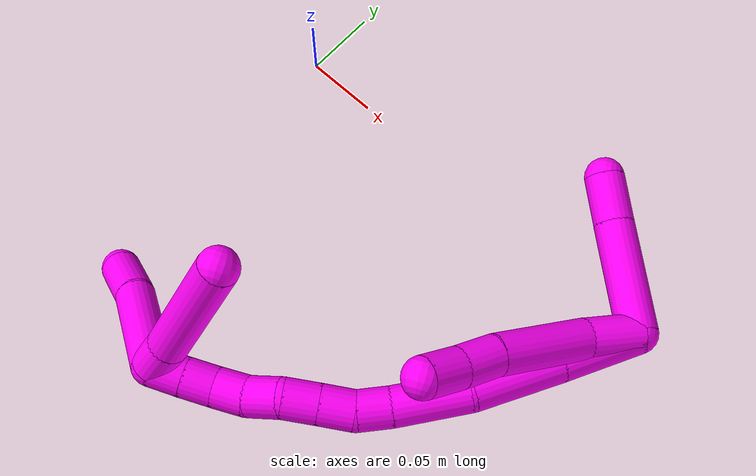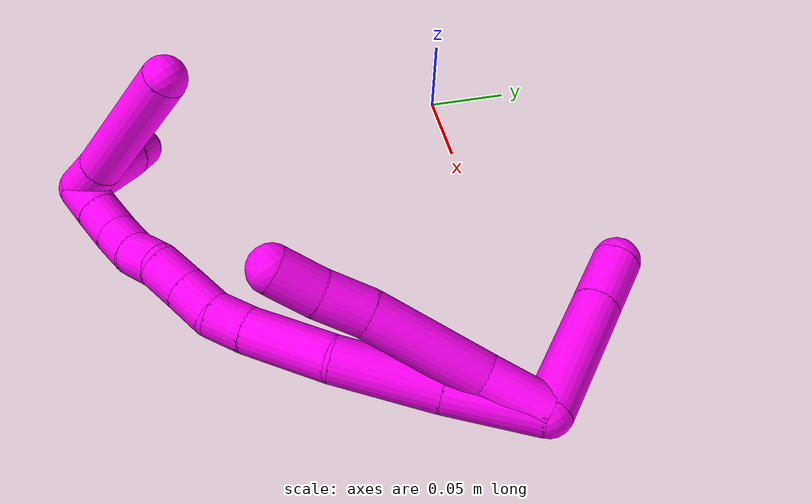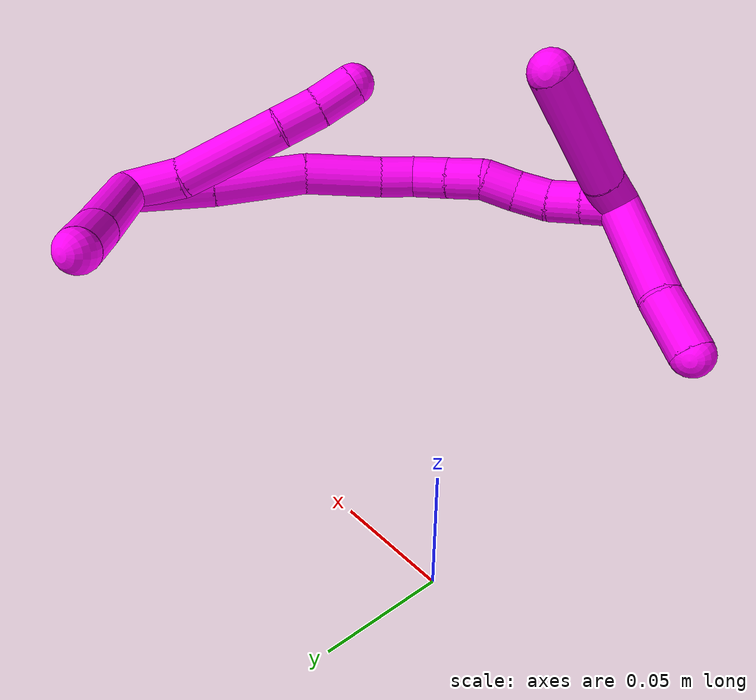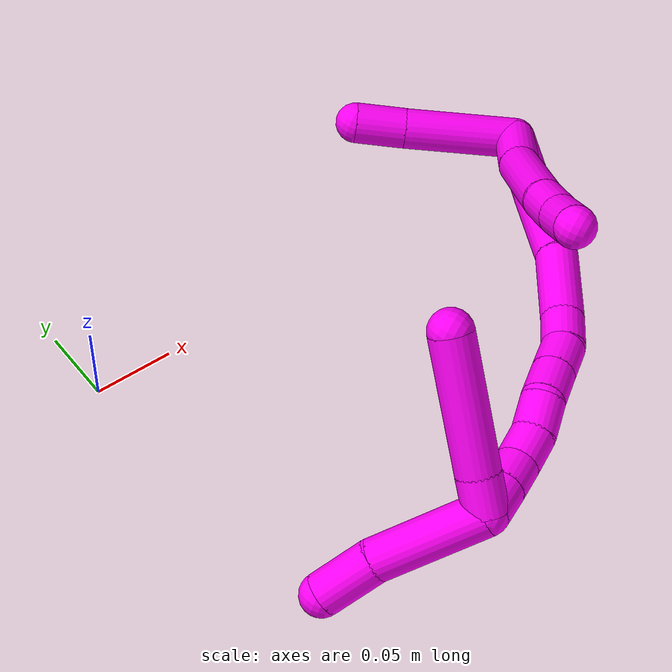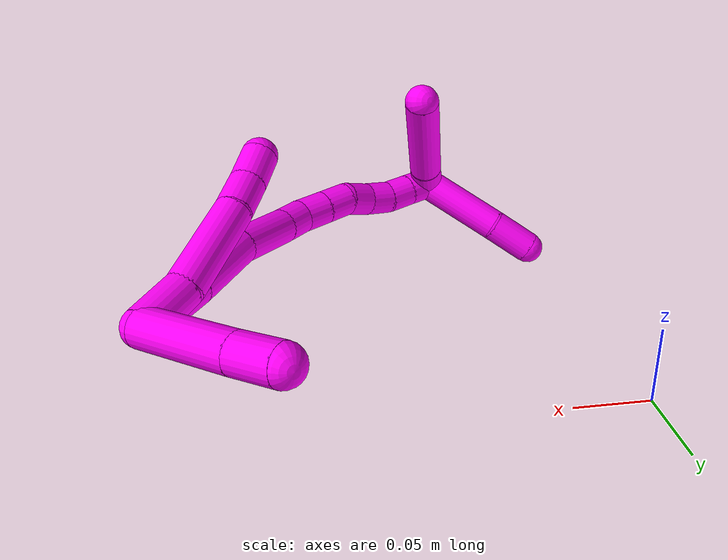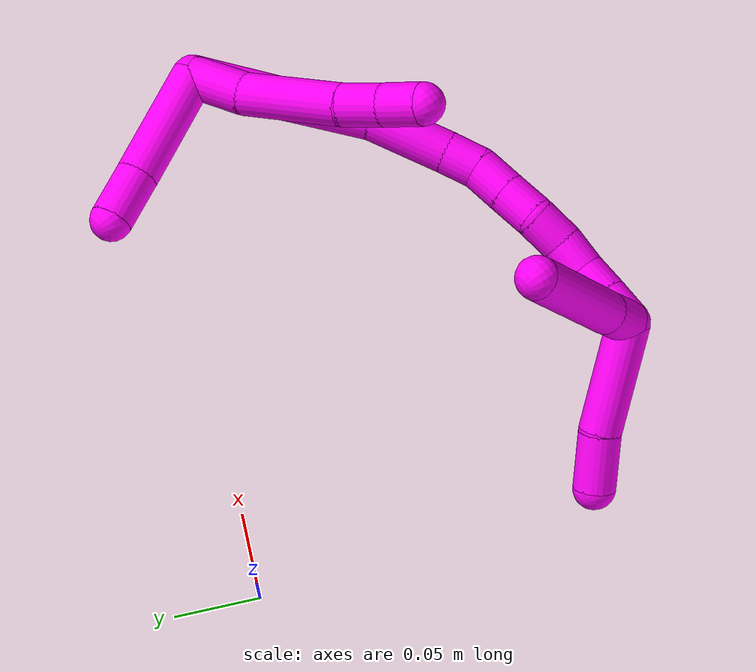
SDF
<sdf version="1.7">
 <world name="default">
  <model name="10">
   <static>0</static>
   <link name="10">
    <collision name="collision-cylinder-e_1_2_8">
     <pose>-0.015856 -0.002136 0.006854 0.302037 -1.14563 -0.195665</pose>
     <geometry><cylinder><radius>0.0125</radius><length>0.034811</length></cylinder></geometry>
     <surface>
      <friction><ode><mu>1.16</mu><mu2>1.16</mu2><slip1>0</slip1><slip2>0</slip2></ode></friction>
      <contact><ode><kp>1e+06</kp><kd>1</kd><max_vel>0</max_vel><min_depth>0.001</min_depth></ode></contact>
     </surface>
    </collision>
    <visual name="visual-cylinder-e_1_2_8">
     <pose>-0.015856 -0.002136 0.006854 0.302037 -1.14563 -0.195665</pose>
     <geometry><cylinder><radius>0.0125</radius><length>0.034811</length></cylinder></geometry>
     <material><ambient>1 0 0.964706 1</ambient></material>
    </visual>
    <collision name="collision-cylinder-e_2_8_9">
     <pose>-0.060428 -0.000828 0.027717 -0.241048 -1.10528 0.149111</pose>
     <geometry><cylinder><radius>0.0125</radius><length>0.064271</length></cylinder></geometry>
     <surface>
      <friction><ode><mu>1.16</mu><mu2>1.16</mu2><slip1>0</slip1><slip2>0</slip2></ode></friction>
      <contact><ode><kp>1e+06</kp><kd>1</kd><max_vel>0</max_vel><min_depth>0.001</min_depth></ode></contact>
     </surface>
    </collision>
    <visual name="visual-cylinder-e_2_8_9">
     <pose>-0.060428 -0.000828 0.027717 -0.241048 -1.10528 0.149111</pose>
     <geometry><cylinder><radius>0.0125</radius><length>0.064271</length></cylinder></geometry>
     <material><ambient>1 0 0.964706 1</ambient></material>
    </visual>
    <collision name="collision-cylinder-e_3_9_10">
     <pose>-0.099828 0.004205 0.048723 -0.223354 -0.979357 0.119397</pose>
     <geometry><cylinder><radius>0.0125</radius><length>0.02574</length></cylinder></geometry>
     <surface>
      <friction><ode><mu>1.16</mu><mu2>1.16</mu2><slip1>0</slip1><slip2>0</slip2></ode></friction>
      <contact><ode><kp>1e+06</kp><kd>1</kd><max_vel>0</max_vel><min_depth>0.001</min_depth></ode></contact>
     </surface>
    </collision>
    <visual name="visual-cylinder-e_3_9_10">
     <pose>-0.099828 0.004205 0.048723 -0.223354 -0.979357 0.119397</pose>
     <geometry><cylinder><radius>0.0125</radius><length>0.02574</length></cylinder></geometry>
     <material><ambient>1 0 0.964706 1</ambient></material>
    </visual>
    <collision name="collision-cylinder-e_4_10_6">
     <pose>-0.12124 0.008489 0.06173 -0.421356 -1.02023 0.238173</pose>
     <geometry><cylinder><radius>0.0125</radius><length>0.025177</length></cylinder></geometry>
     <surface>
      <friction><ode><mu>1.16</mu><mu2>1.16</mu2><slip1>0</slip1><slip2>0</slip2></ode></friction>
      <contact><ode><kp>1e+06</kp><kd>1</kd><max_vel>0</max_vel><min_depth>0.001</min_depth></ode></contact>
     </surface>
    </collision>
    <visual name="visual-cylinder-e_4_10_6">
     <pose>-0.12124 0.008489 0.06173 -0.421356 -1.02023 0.238173</pose>
     <geometry><cylinder><radius>0.0125</radius><length>0.025177</length></cylinder></geometry>
     <material><ambient>1 0 0.964706 1</ambient></material>
    </visual>
    <collision name="collision-cylinder-e_1_2_11">
     <pose>-0.011513 -0.009998 -0.031075 2.8303 -0.339054 -1.65764</pose>
     <geometry><cylinder><radius>0.0125</radius><length>0.069228</length></cylinder></geometry>
     <surface>
      <friction><ode><mu>1.16</mu><mu2>1.16</mu2><slip1>0</slip1><slip2>0</slip2></ode></friction>
      <contact><ode><kp>1e+06</kp><kd>1</kd><max_vel>0</max_vel><min_depth>0.001</min_depth></ode></contact>
     </surface>
    </collision>
    <visual name="visual-cylinder-e_1_2_11">
     <pose>-0.011513 -0.009998 -0.031075 2.8303 -0.339054 -1.65764</pose>
     <geometry><cylinder><radius>0.0125</radius><length>0.069228</length></cylinder></geometry>
     <material><ambient>1 0 0.964706 1</ambient></material>
    </visual>
    <collision name="collision-cylinder-e_2_11_5">
     <pose>-0.028312 -0.023991 -0.076035 2.8615 -0.350789 -1.79763</pose>
     <geometry><cylinder><radius>0.0125</radius><length>0.030772</length></cylinder></geometry>
     <surface>
      <friction><ode><mu>1.16</mu><mu2>1.16</mu2><slip1>0</slip1><slip2>0</slip2></ode></friction>
      <contact><ode><kp>1e+06</kp><kd>1</kd><max_vel>0</max_vel><min_depth>0.001</min_depth></ode></contact>
     </surface>
    </collision>
    <visual name="visual-cylinder-e_2_11_5">
     <pose>-0.028312 -0.023991 -0.076035 2.8615 -0.350789 -1.79763</pose>
     <geometry><cylinder><radius>0.0125</radius><length>0.030772</length></cylinder></geometry>
     <material><ambient>1 0 0.964706 1</ambient></material>
    </visual>
    <collision name="collision-cylinder-e_1_2_12">
     <pose>-0.019036 -0.007156 0.015125 0.441906 -0.849715 -0.202546</pose>
     <geometry><cylinder><radius>0.0125</radius><length>0.05069</length></cylinder></geometry>
     <surface>
      <friction><ode><mu>1.16</mu><mu2>1.16</mu2><slip1>0</slip1><slip2>0</slip2></ode></friction>
      <contact><ode><kp>1e+06</kp><kd>1</kd><max_vel>0</max_vel><min_depth>0.001</min_depth></ode></contact>
     </surface>
    </collision>
    <visual name="visual-cylinder-e_1_2_12">
     <pose>-0.019036 -0.007156 0.015125 0.441906 -0.849715 -0.202546</pose>
     <geometry><cylinder><radius>0.0125</radius><length>0.05069</length></cylinder></geometry>
     <material><ambient>1 0 0.964706 1</ambient></material>
    </visual>
    <collision name="collision-cylinder-e_2_12_13">
     <pose>-0.06029 -0.020487 0.046445 0.364326 -0.908313 -0.179372</pose>
     <geometry><cylinder><radius>0.0125</radius><length>0.056356</length></cylinder></geometry>
     <surface>
      <friction><ode><mu>1.16</mu><mu2>1.16</mu2><slip1>0</slip1><slip2>0</slip2></ode></friction>
      <contact><ode><kp>1e+06</kp><kd>1</kd><max_vel>0</max_vel><min_depth>0.001</min_depth></ode></contact>
     </surface>
    </collision>
    <visual name="visual-cylinder-e_2_12_13">
     <pose>-0.06029 -0.020487 0.046445 0.364326 -0.908313 -0.179372</pose>
     <geometry><cylinder><radius>0.0125</radius><length>0.056356</length></cylinder></geometry>
     <material><ambient>1 0 0.964706 1</ambient></material>
    </visual>
    <collision name="collision-cylinder-e_3_13_14">
     <pose>-0.101043 -0.035926 0.0735 0.706132 -0.914536 -0.35875</pose>
     <geometry><cylinder><radius>0.0125</radius><length>0.04679</length></cylinder></geometry>
     <surface>
      <friction><ode><mu>1.16</mu><mu2>1.16</mu2><slip1>0</slip1><slip2>0</slip2></ode></friction>
      <contact><ode><kp>1e+06</kp><kd>1</kd><max_vel>0</max_vel><min_depth>0.001</min_depth></ode></contact>
     </surface>
    </collision>
    <visual name="visual-cylinder-e_3_13_14">
     <pose>-0.101043 -0.035926 0.0735 0.706132 -0.914536 -0.35875</pose>
     <geometry><cylinder><radius>0.0125</radius><length>0.04679</length></cylinder></geometry>
     <material><ambient>1 0 0.964706 1</ambient></material>
    </visual>
    <collision name="collision-cylinder-e_4_14_15">
     <pose>-0.128464 -0.048836 0.088548 0.716587 -1.01225 -0.409298</pose>
     <geometry><cylinder><radius>0.0125</radius><length>0.020956</length></cylinder></geometry>
     <surface>
      <friction><ode><mu>1.16</mu><mu2>1.16</mu2><slip1>0</slip1><slip2>0</slip2></ode></friction>
      <contact><ode><kp>1e+06</kp><kd>1</kd><max_vel>0</max_vel><min_depth>0.001</min_depth></ode></contact>
     </surface>
    </collision>
    <visual name="visual-cylinder-e_4_14_15">
     <pose>-0.128464 -0.048836 0.088548 0.716587 -1.01225 -0.409298</pose>
     <geometry><cylinder><radius>0.0125</radius><length>0.020956</length></cylinder></geometry>
     <material><ambient>1 0 0.964706 1</ambient></material>
    </visual>
    <collision name="collision-cylinder-e_5_15_16">
     <pose>-0.147213 -0.056652 0.09397 1.28278 -1.15555 -0.906143</pose>
     <geometry><cylinder><radius>0.0125</radius><length>0.021559</length></cylinder></geometry>
     <surface>
      <friction><ode><mu>1.16</mu><mu2>1.16</mu2><slip1>0</slip1><slip2>0</slip2></ode></friction>
      <contact><ode><kp>1e+06</kp><kd>1</kd><max_vel>0</max_vel><min_depth>0.001</min_depth></ode></contact>
     </surface>
    </collision>
    <visual name="visual-cylinder-e_5_15_16">
     <pose>-0.147213 -0.056652 0.09397 1.28278 -1.15555 -0.906143</pose>
     <geometry><cylinder><radius>0.0125</radius><length>0.021559</length></cylinder></geometry>
     <material><ambient>1 0 0.964706 1</ambient></material>
    </visual>
    <collision name="collision-cylinder-e_6_16_17">
     <pose>-0.166981 -0.064938 0.096569 1.25089 -1.15815 -0.882293</pose>
     <geometry><cylinder><radius>0.0125</radius><length>0.021624</length></cylinder></geometry>
     <surface>
      <friction><ode><mu>1.16</mu><mu2>1.16</mu2><slip1>0</slip1><slip2>0</slip2></ode></friction>
      <contact><ode><kp>1e+06</kp><kd>1</kd><max_vel>0</max_vel><min_depth>0.001</min_depth></ode></contact>
     </surface>
    </collision>
    <visual name="visual-cylinder-e_6_16_17">
     <pose>-0.166981 -0.064938 0.096569 1.25089 -1.15815 -0.882293</pose>
     <geometry><cylinder><radius>0.0125</radius><length>0.021624</length></cylinder></geometry>
     <material><ambient>1 0 0.964706 1</ambient></material>
    </visual>
    <collision name="collision-cylinder-e_7_17_18">
     <pose>-0.184624 -0.076037 0.100281 1.24634 -0.809985 -0.597749</pose>
     <geometry><cylinder><radius>0.0125</radius><length>0.02137</length></cylinder></geometry>
     <surface>
      <friction><ode><mu>1.16</mu><mu2>1.16</mu2><slip1>0</slip1><slip2>0</slip2></ode></friction>
      <contact><ode><kp>1e+06</kp><kd>1</kd><max_vel>0</max_vel><min_depth>0.001</min_depth></ode></contact>
     </surface>
    </collision>
    <visual name="visual-cylinder-e_7_17_18">
     <pose>-0.184624 -0.076037 0.100281 1.24634 -0.809985 -0.597749</pose>
     <geometry><cylinder><radius>0.0125</radius><length>0.02137</length></cylinder></geometry>
     <material><ambient>1 0 0.964706 1</ambient></material>
    </visual>
    <collision name="collision-cylinder-e_8_18_19">
     <pose>-0.200746 -0.088979 0.102735 1.55323 -0.952783 -0.938542</pose>
     <geometry><cylinder><radius>0.0125</radius><length>0.020571</length></cylinder></geometry>
     <surface>
      <friction><ode><mu>1.16</mu><mu2>1.16</mu2><slip1>0</slip1><slip2>0</slip2></ode></friction>
      <contact><ode><kp>1e+06</kp><kd>1</kd><max_vel>0</max_vel><min_depth>0.001</min_depth></ode></contact>
     </surface>
    </collision>
    <visual name="visual-cylinder-e_8_18_19">
     <pose>-0.200746 -0.088979 0.102735 1.55323 -0.952783 -0.938542</pose>
     <geometry><cylinder><radius>0.0125</radius><length>0.020571</length></cylinder></geometry>
     <material><ambient>1 0 0.964706 1</ambient></material>
    </visual>
    <collision name="collision-cylinder-e_9_19_20">
     <pose>-0.218382 -0.098747 0.102757 1.59249 -1.18016 -1.2003</pose>
     <geometry><cylinder><radius>0.0125</radius><length>0.020013</length></cylinder></geometry>
     <surface>
      <friction><ode><mu>1.16</mu><mu2>1.16</mu2><slip1>0</slip1><slip2>0</slip2></ode></friction>
      <contact><ode><kp>1e+06</kp><kd>1</kd><max_vel>0</max_vel><min_depth>0.001</min_depth></ode></contact>
     </surface>
    </collision>
    <visual name="visual-cylinder-e_9_19_20">
     <pose>-0.218382 -0.098747 0.102757 1.59249 -1.18016 -1.2003</pose>
     <geometry><cylinder><radius>0.0125</radius><length>0.020013</length></cylinder></geometry>
     <material><ambient>1 0 0.964706 1</ambient></material>
    </visual>
    <collision name="collision-cylinder-e_10_20_1">
     <pose>-0.236915 -0.106361 0.102346 1.65678 -1.1804 -1.26124</pose>
     <geometry><cylinder><radius>0.0125</radius><length>0.020071</length></cylinder></geometry>
     <surface>
      <friction><ode><mu>1.16</mu><mu2>1.16</mu2><slip1>0</slip1><slip2>0</slip2></ode></friction>
      <contact><ode><kp>1e+06</kp><kd>1</kd><max_vel>0</max_vel><min_depth>0.001</min_depth></ode></contact>
     </surface>
    </collision>
    <visual name="visual-cylinder-e_10_20_1">
     <pose>-0.236915 -0.106361 0.102346 1.65678 -1.1804 -1.26124</pose>
     <geometry><cylinder><radius>0.0125</radius><length>0.020071</length></cylinder></geometry>
     <material><ambient>1 0 0.964706 1</ambient></material>
    </visual>
    <collision name="collision-cylinder-e_1_1_21">
     <pose>-0.245821 -0.101216 0.095309 -2.21403 0.03343 -0.066819</pose>
     <geometry><cylinder><radius>0.0125</radius><length>0.022383</length></cylinder></geometry>
     <surface>
      <friction><ode><mu>1.16</mu><mu2>1.16</mu2><slip1>0</slip1><slip2>0</slip2></ode></friction>
      <contact><ode><kp>1e+06</kp><kd>1</kd><max_vel>0</max_vel><min_depth>0.001</min_depth></ode></contact>
     </surface>
    </collision>
    <visual name="visual-cylinder-e_1_1_21">
     <pose>-0.245821 -0.101216 0.095309 -2.21403 0.03343 -0.066819</pose>
     <geometry><cylinder><radius>0.0125</radius><length>0.022383</length></cylinder></geometry>
     <material><ambient>1 0 0.964706 1</ambient></material>
    </visual>
    <collision name="collision-cylinder-e_2_21_4">
     <pose>-0.246973 -0.060416 0.066479 -2.17786 -0.039317 0.075152</pose>
     <geometry><cylinder><radius>0.0125</radius><length>0.077617</length></cylinder></geometry>
     <surface>
      <friction><ode><mu>1.16</mu><mu2>1.16</mu2><slip1>0</slip1><slip2>0</slip2></ode></friction>
      <contact><ode><kp>1e+06</kp><kd>1</kd><max_vel>0</max_vel><min_depth>0.001</min_depth></ode></contact>
     </surface>
    </collision>
    <visual name="visual-cylinder-e_2_21_4">
     <pose>-0.246973 -0.060416 0.066479 -2.17786 -0.039317 0.075152</pose>
     <geometry><cylinder><radius>0.0125</radius><length>0.077617</length></cylinder></geometry>
     <material><ambient>1 0 0.964706 1</ambient></material>
    </visual>
    <collision name="collision-cylinder-e_1_1_22">
     <pose>-0.252468 -0.135376 0.08202 2.24142 -0.19251 -0.394477</pose>
     <geometry><cylinder><radius>0.0125</radius><length>0.065568</length></cylinder></geometry>
     <surface>
      <friction><ode><mu>1.16</mu><mu2>1.16</mu2><slip1>0</slip1><slip2>0</slip2></ode></friction>
      <contact><ode><kp>1e+06</kp><kd>1</kd><max_vel>0</max_vel><min_depth>0.001</min_depth></ode></contact>
     </surface>
    </collision>
    <visual name="visual-cylinder-e_1_1_22">
     <pose>-0.252468 -0.135376 0.08202 2.24142 -0.19251 -0.394477</pose>
     <geometry><cylinder><radius>0.0125</radius><length>0.065568</length></cylinder></geometry>
     <material><ambient>1 0 0.964706 1</ambient></material>
    </visual>
    <collision name="collision-cylinder-e_2_22_3">
     <pose>-0.262996 -0.17521 0.053997 2.07266 -0.249811 -0.418039</pose>
     <geometry><cylinder><radius>0.0125</radius><length>0.034432</length></cylinder></geometry>
     <surface>
      <friction><ode><mu>1.16</mu><mu2>1.16</mu2><slip1>0</slip1><slip2>0</slip2></ode></friction>
      <contact><ode><kp>1e+06</kp><kd>1</kd><max_vel>0</max_vel><min_depth>0.001</min_depth></ode></contact>
     </surface>
    </collision>
    <visual name="visual-cylinder-e_2_22_3">
     <pose>-0.262996 -0.17521 0.053997 2.07266 -0.249811 -0.418039</pose>
     <geometry><cylinder><radius>0.0125</radius><length>0.034432</length></cylinder></geometry>
     <material><ambient>1 0 0.964706 1</ambient></material>
    </visual>
    <collision name="collision-sphere-3">
     <pose>-0.267252 -0.189835 0.045972 0 -0 0</pose>
     <geometry><sphere><radius>0.0125</radius></sphere></geometry>
     <surface>
      <friction><ode><mu>1.16</mu><mu2>1.16</mu2><slip1>0</slip1><slip2>0</slip2></ode></friction>
      <contact><ode><kp>1e+06</kp><kd>1</kd><max_vel>0</max_vel><min_depth>0.001</min_depth></ode></contact>
     </surface>
    </collision>
    <visual name="visual-sphere-3">
     <pose>-0.267252 -0.189835 0.045972 0 -0 0</pose>
     <geometry><sphere><radius>0.0125</radius></sphere></geometry>
     <material><ambient>1 0 0.964706 1</ambient></material>
    </visual>
    <collision name="collision-sphere-22">
     <pose>-0.25874 -0.160586 0.062022 0 -0 0</pose>
     <geometry><sphere><radius>0.0125</radius></sphere></geometry>
     <surface>
      <friction><ode><mu>1.16</mu><mu2>1.16</mu2><slip1>0</slip1><slip2>0</slip2></ode></friction>
      <contact><ode><kp>1e+06</kp><kd>1</kd><max_vel>0</max_vel><min_depth>0.001</min_depth></ode></contact>
     </surface>
    </collision>
    <visual name="visual-sphere-22">
     <pose>-0.25874 -0.160586 0.062022 0 -0 0</pose>
     <geometry><sphere><radius>0.0125</radius></sphere></geometry>
     <material><ambient>1 0 0.964706 1</ambient></material>
    </visual>
    <collision name="collision-sphere-4">
     <pose>-0.248498 -0.028567 0.044358 0 -0 0</pose>
     <geometry><sphere><radius>0.0125</radius></sphere></geometry>
     <surface>
      <friction><ode><mu>1.16</mu><mu2>1.16</mu2><slip1>0</slip1><slip2>0</slip2></ode></friction>
      <contact><ode><kp>1e+06</kp><kd>1</kd><max_vel>0</max_vel><min_depth>0.001</min_depth></ode></contact>
     </surface>
    </collision>
    <visual name="visual-sphere-4">
     <pose>-0.248498 -0.028567 0.044358 0 -0 0</pose>
     <geometry><sphere><radius>0.0125</radius></sphere></geometry>
     <material><ambient>1 0 0.964706 1</ambient></material>
    </visual>
    <collision name="collision-sphere-21">
     <pose>-0.245447 -0.092266 0.088601 0 -0 0</pose>
     <geometry><sphere><radius>0.0125</radius></sphere></geometry>
     <surface>
      <friction><ode><mu>1.16</mu><mu2>1.16</mu2><slip1>0</slip1><slip2>0</slip2></ode></friction>
      <contact><ode><kp>1e+06</kp><kd>1</kd><max_vel>0</max_vel><min_depth>0.001</min_depth></ode></contact>
     </surface>
    </collision>
    <visual name="visual-sphere-21">
     <pose>-0.245447 -0.092266 0.088601 0 -0 0</pose>
     <geometry><sphere><radius>0.0125</radius></sphere></geometry>
     <material><ambient>1 0 0.964706 1</ambient></material>
    </visual>
    <collision name="collision-sphere-1">
     <pose>-0.246195 -0.110166 0.102018 0 -0 0</pose>
     <geometry><sphere><radius>0.0125</radius></sphere></geometry>
     <surface>
      <friction><ode><mu>1.16</mu><mu2>1.16</mu2><slip1>0</slip1><slip2>0</slip2></ode></friction>
      <contact><ode><kp>1e+06</kp><kd>1</kd><max_vel>0</max_vel><min_depth>0.001</min_depth></ode></contact>
     </surface>
    </collision>
    <visual name="visual-sphere-1">
     <pose>-0.246195 -0.110166 0.102018 0 -0 0</pose>
     <geometry><sphere><radius>0.0125</radius></sphere></geometry>
     <material><ambient>1 0 0.964706 1</ambient></material>
    </visual>
    <collision name="collision-sphere-11">
     <pose>-0.023025 -0.019997 -0.062149 0 -0 0</pose>
     <geometry><sphere><radius>0.0125</radius></sphere></geometry>
     <surface>
      <friction><ode><mu>1.16</mu><mu2>1.16</mu2><slip1>0</slip1><slip2>0</slip2></ode></friction>
      <contact><ode><kp>1e+06</kp><kd>1</kd><max_vel>0</max_vel><min_depth>0.001</min_depth></ode></contact>
     </surface>
    </collision>
    <visual name="visual-sphere-11">
     <pose>-0.023025 -0.019997 -0.062149 0 -0 0</pose>
     <geometry><sphere><radius>0.0125</radius></sphere></geometry>
     <material><ambient>1 0 0.964706 1</ambient></material>
    </visual>
    <collision name="collision-sphere-6">
     <pose>-0.131969 0.011182 0.06774 0 -0 0</pose>
     <geometry><sphere><radius>0.0125</radius></sphere></geometry>
     <surface>
      <friction><ode><mu>1.16</mu><mu2>1.16</mu2><slip1>0</slip1><slip2>0</slip2></ode></friction>
      <contact><ode><kp>1e+06</kp><kd>1</kd><max_vel>0</max_vel><min_depth>0.001</min_depth></ode></contact>
     </surface>
    </collision>
    <visual name="visual-sphere-6">
     <pose>-0.131969 0.011182 0.06774 0 -0 0</pose>
     <geometry><sphere><radius>0.0125</radius></sphere></geometry>
     <material><ambient>1 0 0.964706 1</ambient></material>
    </visual>
    <collision name="collision-sphere-10">
     <pose>-0.110512 0.005795 0.05572 0 -0 0</pose>
     <geometry><sphere><radius>0.0125</radius></sphere></geometry>
     <surface>
      <friction><ode><mu>1.16</mu><mu2>1.16</mu2><slip1>0</slip1><slip2>0</slip2></ode></friction>
      <contact><ode><kp>1e+06</kp><kd>1</kd><max_vel>0</max_vel><min_depth>0.001</min_depth></ode></contact>
     </surface>
    </collision>
    <visual name="visual-sphere-10">
     <pose>-0.110512 0.005795 0.05572 0 -0 0</pose>
     <geometry><sphere><radius>0.0125</radius></sphere></geometry>
     <material><ambient>1 0 0.964706 1</ambient></material>
    </visual>
    <collision name="collision-sphere-9">
     <pose>-0.089144 0.002616 0.041725 0 -0 0</pose>
     <geometry><sphere><radius>0.0125</radius></sphere></geometry>
     <surface>
      <friction><ode><mu>1.16</mu><mu2>1.16</mu2><slip1>0</slip1><slip2>0</slip2></ode></friction>
      <contact><ode><kp>1e+06</kp><kd>1</kd><max_vel>0</max_vel><min_depth>0.001</min_depth></ode></contact>
     </surface>
    </collision>
    <visual name="visual-sphere-9">
     <pose>-0.089144 0.002616 0.041725 0 -0 0</pose>
     <geometry><sphere><radius>0.0125</radius></sphere></geometry>
     <material><ambient>1 0 0.964706 1</ambient></material>
    </visual>
    <collision name="collision-sphere-2">
     <geometry><sphere><radius>0.0125</radius></sphere></geometry>
     <surface>
      <friction><ode><mu>1.16</mu><mu2>1.16</mu2><slip1>0</slip1><slip2>0</slip2></ode></friction>
      <contact><ode><kp>1e+06</kp><kd>1</kd><max_vel>0</max_vel><min_depth>0.001</min_depth></ode></contact>
     </surface>
    </collision>
    <visual name="visual-sphere-2">
     <geometry><sphere><radius>0.0125</radius></sphere></geometry>
     <material><ambient>1 0 0.964706 1</ambient></material>
    </visual>
    <collision name="collision-sphere-19">
     <pose>-0.20913 -0.094938 0.10284 0 -0 0</pose>
     <geometry><sphere><radius>0.0125</radius></sphere></geometry>
     <surface>
      <friction><ode><mu>1.16</mu><mu2>1.16</mu2><slip1>0</slip1><slip2>0</slip2></ode></friction>
      <contact><ode><kp>1e+06</kp><kd>1</kd><max_vel>0</max_vel><min_depth>0.001</min_depth></ode></contact>
     </surface>
    </collision>
    <visual name="visual-sphere-19">
     <pose>-0.20913 -0.094938 0.10284 0 -0 0</pose>
     <geometry><sphere><radius>0.0125</radius></sphere></geometry>
     <material><ambient>1 0 0.964706 1</ambient></material>
    </visual>
    <collision name="collision-sphere-8">
     <pose>-0.031712 -0.004271 0.013709 0 -0 0</pose>
     <geometry><sphere><radius>0.0125</radius></sphere></geometry>
     <surface>
      <friction><ode><mu>1.16</mu><mu2>1.16</mu2><slip1>0</slip1><slip2>0</slip2></ode></friction>
      <contact><ode><kp>1e+06</kp><kd>1</kd><max_vel>0</max_vel><min_depth>0.001</min_depth></ode></contact>
     </surface>
    </collision>
    <visual name="visual-sphere-8">
     <pose>-0.031712 -0.004271 0.013709 0 -0 0</pose>
     <geometry><sphere><radius>0.0125</radius></sphere></geometry>
     <material><ambient>1 0 0.964706 1</ambient></material>
    </visual>
    <collision name="collision-sphere-5">
     <pose>-0.033599 -0.027985 -0.089921 0 -0 0</pose>
     <geometry><sphere><radius>0.0125</radius></sphere></geometry>
     <surface>
      <friction><ode><mu>1.16</mu><mu2>1.16</mu2><slip1>0</slip1><slip2>0</slip2></ode></friction>
      <contact><ode><kp>1e+06</kp><kd>1</kd><max_vel>0</max_vel><min_depth>0.001</min_depth></ode></contact>
     </surface>
    </collision>
    <visual name="visual-sphere-5">
     <pose>-0.033599 -0.027985 -0.089921 0 -0 0</pose>
     <geometry><sphere><radius>0.0125</radius></sphere></geometry>
     <material><ambient>1 0 0.964706 1</ambient></material>
    </visual>
    <collision name="collision-sphere-12">
     <pose>-0.038073 -0.014312 0.030251 0 -0 0</pose>
     <geometry><sphere><radius>0.0125</radius></sphere></geometry>
     <surface>
      <friction><ode><mu>1.16</mu><mu2>1.16</mu2><slip1>0</slip1><slip2>0</slip2></ode></friction>
      <contact><ode><kp>1e+06</kp><kd>1</kd><max_vel>0</max_vel><min_depth>0.001</min_depth></ode></contact>
     </surface>
    </collision>
    <visual name="visual-sphere-12">
     <pose>-0.038073 -0.014312 0.030251 0 -0 0</pose>
     <geometry><sphere><radius>0.0125</radius></sphere></geometry>
     <material><ambient>1 0 0.964706 1</ambient></material>
    </visual>
    <collision name="collision-sphere-13">
     <pose>-0.082507 -0.026663 0.062638 0 -0 0</pose>
     <geometry><sphere><radius>0.0125</radius></sphere></geometry>
     <surface>
      <friction><ode><mu>1.16</mu><mu2>1.16</mu2><slip1>0</slip1><slip2>0</slip2></ode></friction>
      <contact><ode><kp>1e+06</kp><kd>1</kd><max_vel>0</max_vel><min_depth>0.001</min_depth></ode></contact>
     </surface>
    </collision>
    <visual name="visual-sphere-13">
     <pose>-0.082507 -0.026663 0.062638 0 -0 0</pose>
     <geometry><sphere><radius>0.0125</radius></sphere></geometry>
     <material><ambient>1 0 0.964706 1</ambient></material>
    </visual>
    <collision name="collision-sphere-14">
     <pose>-0.119578 -0.045189 0.084361 0 -0 0</pose>
     <geometry><sphere><radius>0.0125</radius></sphere></geometry>
     <surface>
      <friction><ode><mu>1.16</mu><mu2>1.16</mu2><slip1>0</slip1><slip2>0</slip2></ode></friction>
      <contact><ode><kp>1e+06</kp><kd>1</kd><max_vel>0</max_vel><min_depth>0.001</min_depth></ode></contact>
     </surface>
    </collision>
    <visual name="visual-sphere-14">
     <pose>-0.119578 -0.045189 0.084361 0 -0 0</pose>
     <geometry><sphere><radius>0.0125</radius></sphere></geometry>
     <material><ambient>1 0 0.964706 1</ambient></material>
    </visual>
    <collision name="collision-sphere-15">
     <pose>-0.137349 -0.052483 0.092735 0 -0 0</pose>
     <geometry><sphere><radius>0.0125</radius></sphere></geometry>
     <surface>
      <friction><ode><mu>1.16</mu><mu2>1.16</mu2><slip1>0</slip1><slip2>0</slip2></ode></friction>
      <contact><ode><kp>1e+06</kp><kd>1</kd><max_vel>0</max_vel><min_depth>0.001</min_depth></ode></contact>
     </surface>
    </collision>
    <visual name="visual-sphere-15">
     <pose>-0.137349 -0.052483 0.092735 0 -0 0</pose>
     <geometry><sphere><radius>0.0125</radius></sphere></geometry>
     <material><ambient>1 0 0.964706 1</ambient></material>
    </visual>
    <collision name="collision-sphere-16">
     <pose>-0.157076 -0.060822 0.095206 0 -0 0</pose>
     <geometry><sphere><radius>0.0125</radius></sphere></geometry>
     <surface>
      <friction><ode><mu>1.16</mu><mu2>1.16</mu2><slip1>0</slip1><slip2>0</slip2></ode></friction>
      <contact><ode><kp>1e+06</kp><kd>1</kd><max_vel>0</max_vel><min_depth>0.001</min_depth></ode></contact>
     </surface>
    </collision>
    <visual name="visual-sphere-16">
     <pose>-0.157076 -0.060822 0.095206 0 -0 0</pose>
     <geometry><sphere><radius>0.0125</radius></sphere></geometry>
     <material><ambient>1 0 0.964706 1</ambient></material>
    </visual>
    <collision name="collision-sphere-17">
     <pose>-0.176885 -0.069054 0.097933 0 -0 0</pose>
     <geometry><sphere><radius>0.0125</radius></sphere></geometry>
     <surface>
      <friction><ode><mu>1.16</mu><mu2>1.16</mu2><slip1>0</slip1><slip2>0</slip2></ode></friction>
      <contact><ode><kp>1e+06</kp><kd>1</kd><max_vel>0</max_vel><min_depth>0.001</min_depth></ode></contact>
     </surface>
    </collision>
    <visual name="visual-sphere-17">
     <pose>-0.176885 -0.069054 0.097933 0 -0 0</pose>
     <geometry><sphere><radius>0.0125</radius></sphere></geometry>
     <material><ambient>1 0 0.964706 1</ambient></material>
    </visual>
    <collision name="collision-sphere-18">
     <pose>-0.192363 -0.08302 0.10263 0 -0 0</pose>
     <geometry><sphere><radius>0.0125</radius></sphere></geometry>
     <surface>
      <friction><ode><mu>1.16</mu><mu2>1.16</mu2><slip1>0</slip1><slip2>0</slip2></ode></friction>
      <contact><ode><kp>1e+06</kp><kd>1</kd><max_vel>0</max_vel><min_depth>0.001</min_depth></ode></contact>
     </surface>
    </collision>
    <visual name="visual-sphere-18">
     <pose>-0.192363 -0.08302 0.10263 0 -0 0</pose>
     <geometry><sphere><radius>0.0125</radius></sphere></geometry>
     <material><ambient>1 0 0.964706 1</ambient></material>
    </visual>
    <collision name="collision-sphere-20">
     <pose>-0.227635 -0.102556 0.102674 0 -0 0</pose>
     <geometry><sphere><radius>0.0125</radius></sphere></geometry>
     <surface>
      <friction><ode><mu>1.16</mu><mu2>1.16</mu2><slip1>0</slip1><slip2>0</slip2></ode></friction>
      <contact><ode><kp>1e+06</kp><kd>1</kd><max_vel>0</max_vel><min_depth>0.001</min_depth></ode></contact>
     </surface>
    </collision>
    <visual name="visual-sphere-20">
     <pose>-0.227635 -0.102556 0.102674 0 -0 0</pose>
     <geometry><sphere><radius>0.0125</radius></sphere></geometry>
     <material><ambient>1 0 0.964706 1</ambient></material>
    </visual>
    <inertial>
     <pose>-0.130366 -0.050018 0.048037 0 -0 0</pose>
     <mass>0.75</mass>
     <inertia><ixx>2.9e-05</ixx><ixy>0</ixy><ixz>0</ixz><iyy>-1.1e-05</iyy><iyz>0</iyz><izz>9.9e-05</izz></inertia>
    </inertial>
   </link>
   <pose>0.295013 -0.026633 0.062411 1.78963 0.481902 0.546418</pose>
  </model>
 </world>
</sdf>
